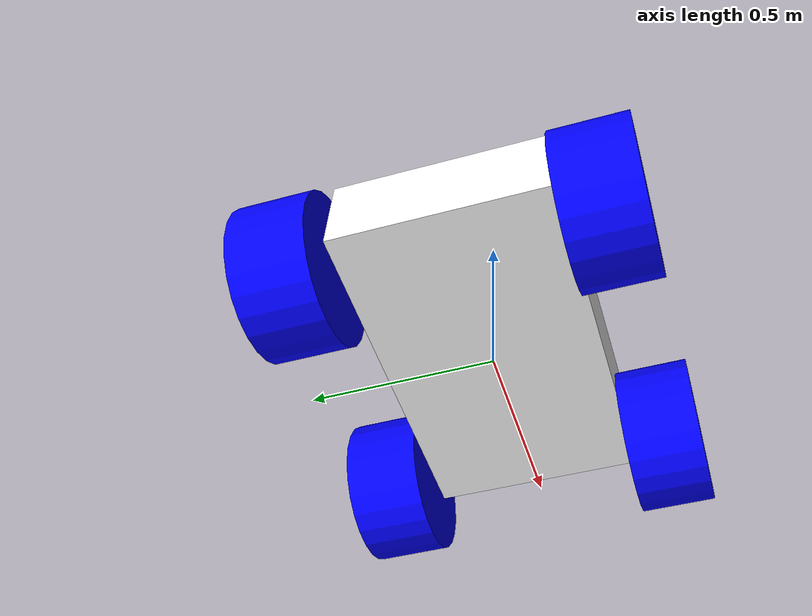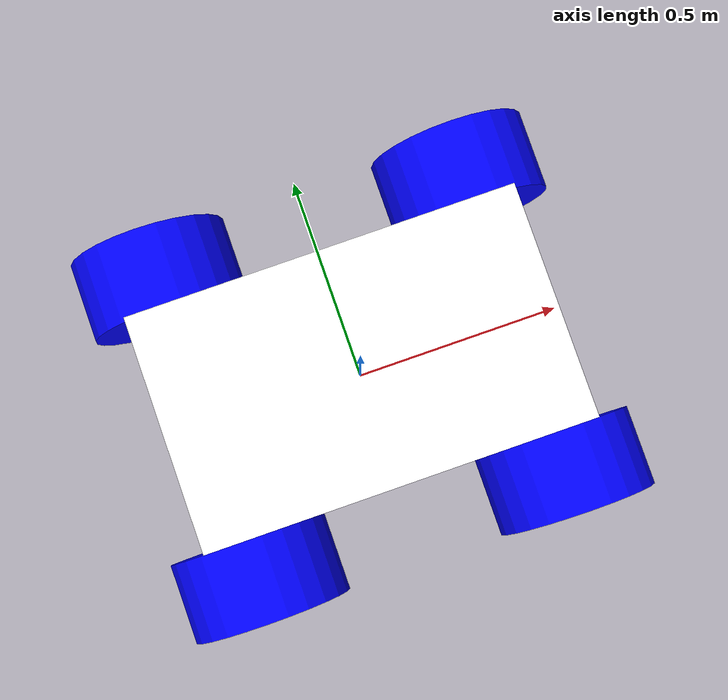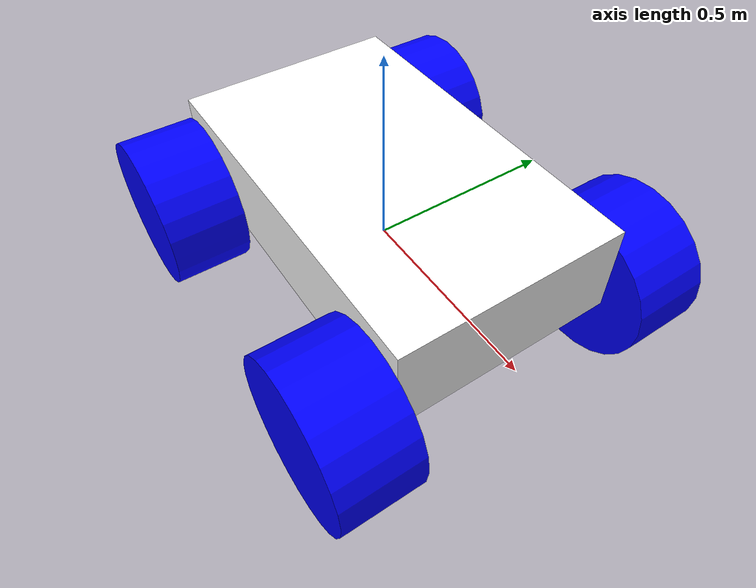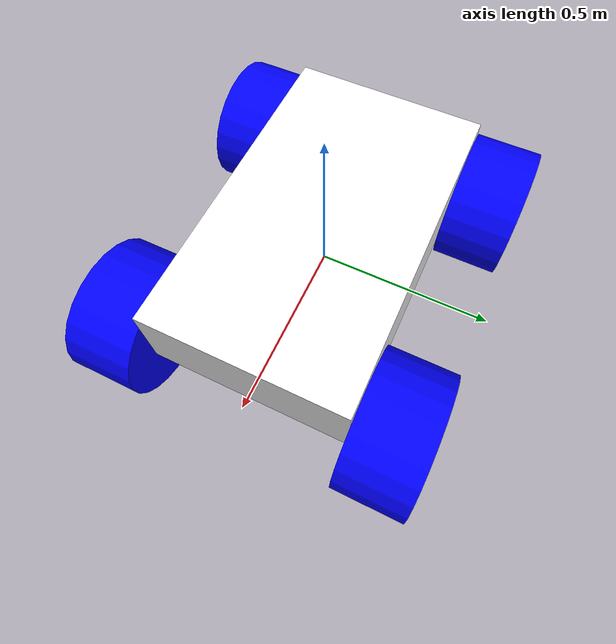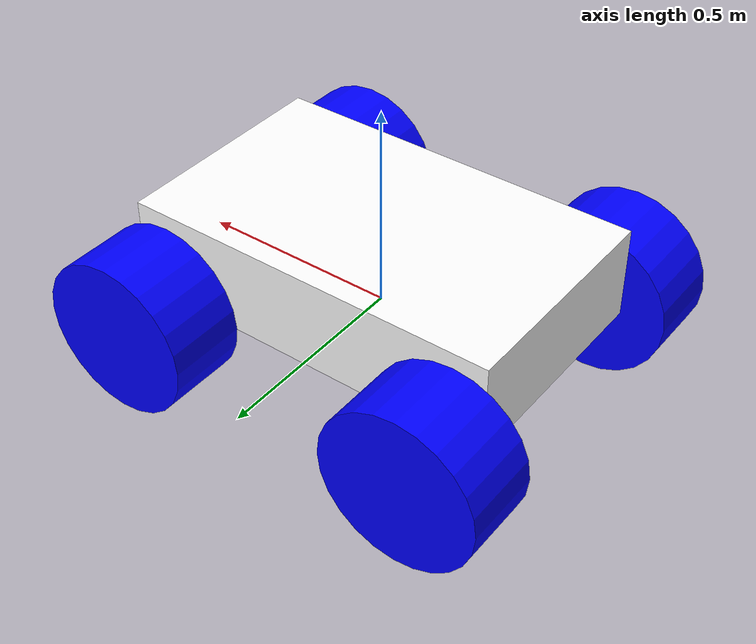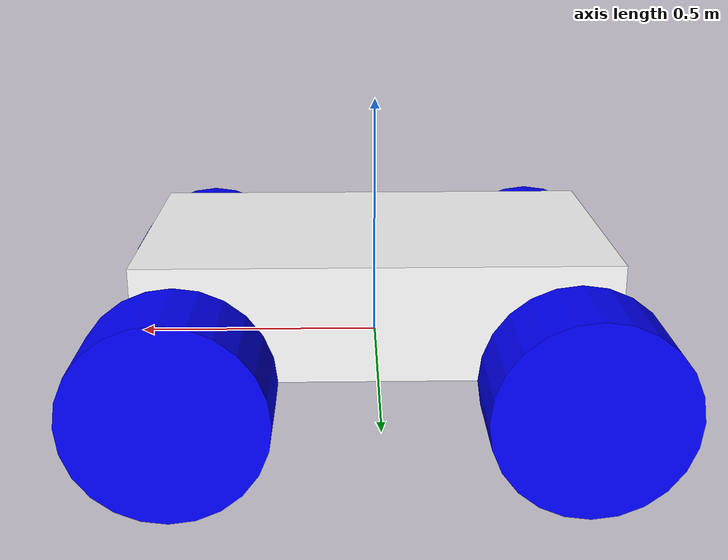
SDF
<sdf version='1.9'>
  <model name='helios'>
    <link name='base_link'>
      <inertial>
        <pose>0 0 0.116 0 0 0</pose>
        <mass>0.057000000000000002</mass>
        <inertia>
          <ixx>0.001777355</ixx>
          <ixy>0</ixy>
          <ixz>-6.8455752177953858e-20</ixz>
          <iyy>0.0044509781899999979</iyy>
          <iyz>0</iyz>
          <izz>0.0057170051899999999</izz>
        </inertia>
      </inertial>
      <collision name='base_link_fixed_joint_lump__chassis_collision'>
        <pose>0 0 0.116 0 0 0</pose>
        <geometry>
          <box>
            <size>0.9398 0.566 0.232</size>
          </box>
        </geometry>
      </collision>
      <visual name='base_link_fixed_joint_lump__chassis_visual'>
        <pose>0 0 0.116 0 0 0</pose>
        <geometry>
          <box>
            <size>0.9398 0.566 0.232</size>
          </box>
        </geometry>
        <material>
          <diffuse>1 1 1 1</diffuse>
          <ambient>1 1 1 1</ambient>
        </material>
      </visual>
    </link>
    <joint name='back_left_wheel_joint' type='revolute'>
      <pose relative_to='base_link'>-0.38735 0.38 0 -1.570796326794896 0 0</pose>
      <parent>base_link</parent>
      <child>back_left_wheel</child>
      <axis>
        <xyz>0 0 1</xyz>
        <limit>
          <lower>-10000000000000000</lower>
          <upper>10000000000000000</upper>
        </limit>
        <dynamics>
          <spring_reference>0</spring_reference>
          <spring_stiffness>0</spring_stiffness>
        </dynamics>
      </axis>
    </joint>
    <link name='back_left_wheel'>
      <pose relative_to='back_left_wheel_joint'>0 0 0 0 0 0</pose>
      <inertial>
        <pose>0 0 0 0 0 0</pose>
        <mass>2.0190000000000001</mass>
        <inertia>
          <ixx>0.025329028</ixx>
          <ixy>0</ixy>
          <ixz>0</ixz>
          <iyy>0.025329028</iyy>
          <iyz>0</iyz>
          <izz>0.037993542000000012</izz>
        </inertia>
      </inertial>
      <collision name='back_left_wheel_collision'>
        <pose>0 0 0 0 0 0</pose>
        <geometry>
          <cylinder>
            <length>0.19400000000000001</length>
            <radius>0.19400000000000001</radius>
          </cylinder>
        </geometry>
      </collision>
      <visual name='back_left_wheel_visual'>
        <pose>0 0 0 0 0 0</pose>
        <geometry>
          <cylinder>
            <length>0.19400000000000001</length>
            <radius>0.19400000000000001</radius>
          </cylinder>
        </geometry>
        <material>
          <diffuse>0 0 1 1</diffuse>
          <ambient>0 0 1 1</ambient>
        </material>
      </visual>
    </link>
    <joint name='back_right_wheel_joint' type='revolute'>
      <pose relative_to='base_link'>-0.38735 -0.38 0 1.570796326794896 0 0</pose>
      <parent>base_link</parent>
      <child>back_right_wheel</child>
      <axis>
        <xyz>0 0 -1</xyz>
        <limit>
          <lower>-10000000000000000</lower>
          <upper>10000000000000000</upper>
        </limit>
        <dynamics>
          <spring_reference>0</spring_reference>
          <spring_stiffness>0</spring_stiffness>
        </dynamics>
      </axis>
    </joint>
    <link name='back_right_wheel'>
      <pose relative_to='back_right_wheel_joint'>0 0 0 0 0 0</pose>
      <inertial>
        <pose>0 0 0 0 0 0</pose>
        <mass>2.0190000000000001</mass>
        <inertia>
          <ixx>0.025329028</ixx>
          <ixy>0</ixy>
          <ixz>0</ixz>
          <iyy>0.025329028</iyy>
          <iyz>0</iyz>
          <izz>0.037993542000000012</izz>
        </inertia>
      </inertial>
      <collision name='back_right_wheel_collision'>
        <pose>0 0 0 0 0 0</pose>
        <geometry>
          <cylinder>
            <length>0.19400000000000001</length>
            <radius>0.19400000000000001</radius>
          </cylinder>
        </geometry>
      </collision>
      <visual name='back_right_wheel_visual'>
        <pose>0 0 0 0 0 0</pose>
        <geometry>
          <cylinder>
            <length>0.19400000000000001</length>
            <radius>0.19400000000000001</radius>
          </cylinder>
        </geometry>
        <material>
          <diffuse>0 0 1 1</diffuse>
          <ambient>0 0 1 1</ambient>
        </material>
      </visual>
    </link>
    <joint name='front_left_wheel_joint' type='revolute'>
      <pose relative_to='base_link'>0.38735 0.38 0 -1.570796326794896 0 0</pose>
      <parent>base_link</parent>
      <child>front_left_wheel</child>
      <axis>
        <xyz>0 0 1</xyz>
        <limit>
          <lower>-10000000000000000</lower>
          <upper>10000000000000000</upper>
        </limit>
        <dynamics>
          <spring_reference>0</spring_reference>
          <spring_stiffness>0</spring_stiffness>
        </dynamics>
      </axis>
    </joint>
    <link name='front_left_wheel'>
      <pose relative_to='front_left_wheel_joint'>0 0 0 0 0 0</pose>
      <inertial>
        <pose>0 0 0 0 0 0</pose>
        <mass>2.0190000000000001</mass>
        <inertia>
          <ixx>0.025329028</ixx>
          <ixy>0</ixy>
          <ixz>0</ixz>
          <iyy>0.025329028</iyy>
          <iyz>0</iyz>
          <izz>0.037993542000000012</izz>
        </inertia>
      </inertial>
      <collision name='front_left_wheel_collision'>
        <pose>0 0 0 0 0 0</pose>
        <geometry>
          <cylinder>
            <length>0.19400000000000001</length>
            <radius>0.19400000000000001</radius>
          </cylinder>
        </geometry>
      </collision>
      <visual name='front_left_wheel_visual'>
        <pose>0 0 0 0 0 0</pose>
        <geometry>
          <cylinder>
            <length>0.19400000000000001</length>
            <radius>0.19400000000000001</radius>
          </cylinder>
        </geometry>
        <material>
          <diffuse>0 0 1 1</diffuse>
          <ambient>0 0 1 1</ambient>
        </material>
      </visual>
    </link>
    <joint name='front_right_wheel_joint' type='revolute'>
      <pose relative_to='base_link'>0.38735 -0.38 0 1.570796326794896 0 0</pose>
      <parent>base_link</parent>
      <child>front_right_wheel</child>
      <axis>
        <xyz>0 0 -1</xyz>
        <limit>
          <lower>-10000000000000000</lower>
          <upper>10000000000000000</upper>
        </limit>
        <dynamics>
          <spring_reference>0</spring_reference>
          <spring_stiffness>0</spring_stiffness>
        </dynamics>
      </axis>
    </joint>
    <link name='front_right_wheel'>
      <pose relative_to='front_right_wheel_joint'>0 0 0 0 0 0</pose>
      <inertial>
        <pose>0 0 0 0 0 0</pose>
        <mass>2.0190000000000001</mass>
        <inertia>
          <ixx>0.025329028</ixx>
          <ixy>0</ixy>
          <ixz>0</ixz>
          <iyy>0.025329028</iyy>
          <iyz>0</iyz>
          <izz>0.037993542000000012</izz>
        </inertia>
      </inertial>
      <collision name='front_right_wheel_collision'>
        <pose>0 0 0 0 0 0</pose>
        <geometry>
          <cylinder>
            <length>0.19400000000000001</length>
            <radius>0.19400000000000001</radius>
          </cylinder>
        </geometry>
      </collision>
      <visual name='front_right_wheel_visual'>
        <pose>0 0 0 0 0 0</pose>
        <geometry>
          <cylinder>
            <length>0.19400000000000001</length>
            <radius>0.19400000000000001</radius>
          </cylinder>
        </geometry>
        <material>
          <diffuse>0 0 1 1</diffuse>
          <ambient>0 0 1 1</ambient>
        </material>
      </visual>
    </link>
    <frame name='chassis_joint' attached_to='base_link'>
      <pose>-0.4699 0 0 0 -0 0</pose>
    </frame>
    <frame name='chassis' attached_to='chassis_joint'/>
  </model>
</sdf>
